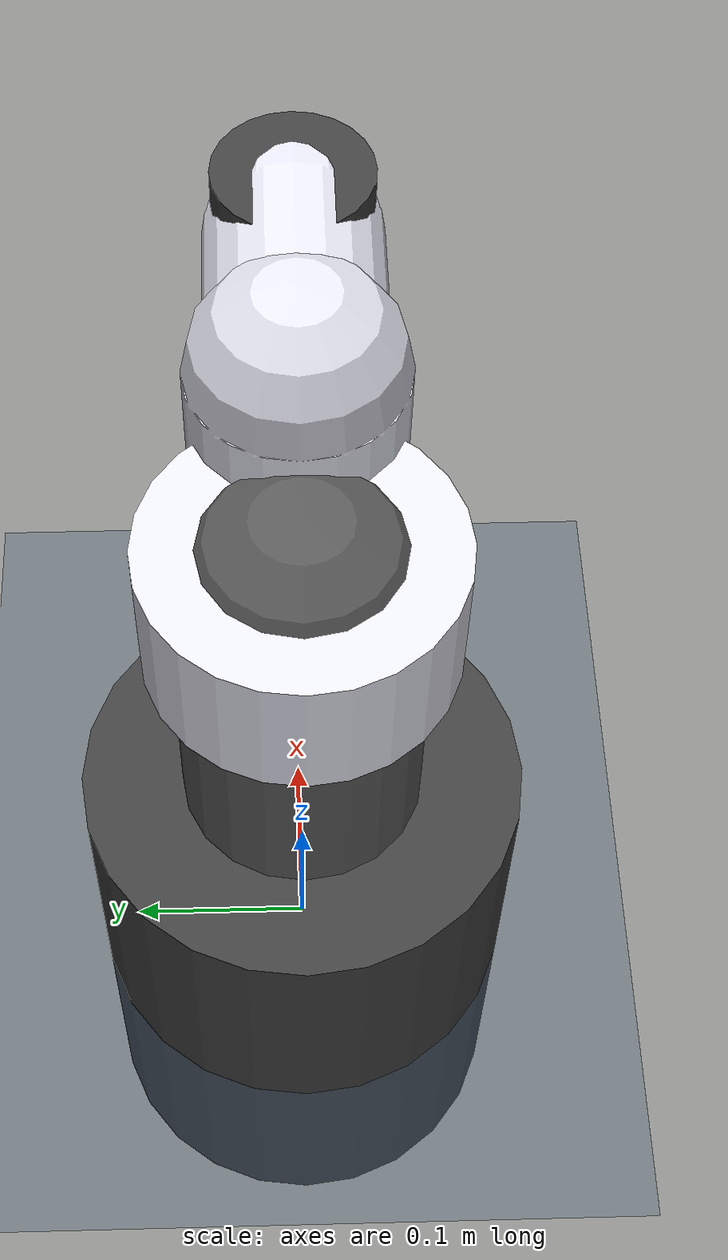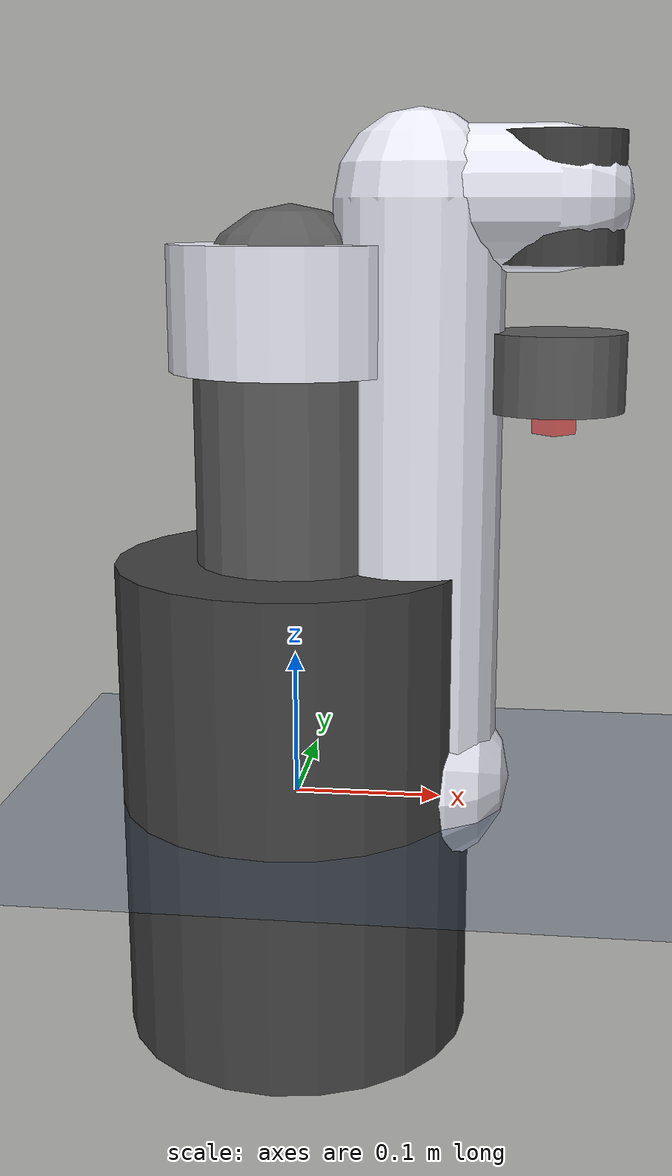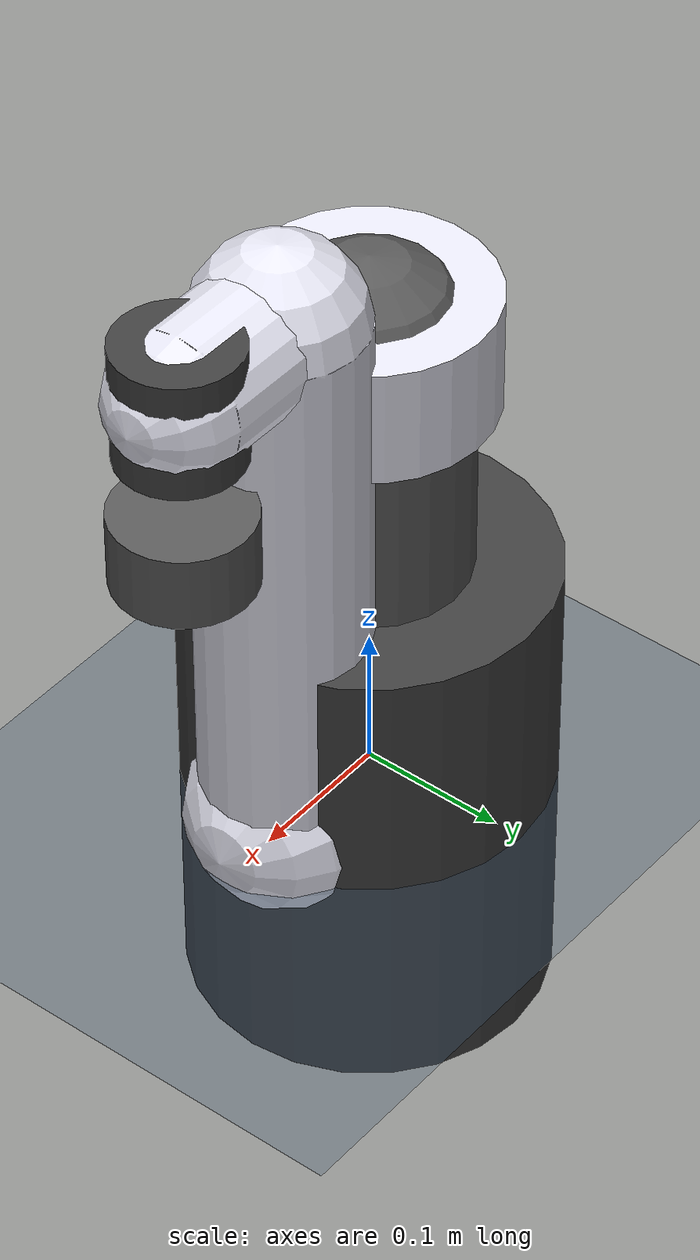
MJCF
<?xml version='1.0' encoding='utf-8'?>
<mujoco model="panda"><compiler angle="radian" meshdir="assets" autolimits="true" /><option integrator="implicitfast" /><default><joint armature="0.1" damping="1" axis="0 0 1" range="-2.8973 2.8973" /><default class="arm"><position ctrlrange="-2.8973 2.8973" forcerange="-150 150" kp="500" kv="50" /></default><default class="collision"><geom type="mesh" group="3" /></default><default class="visual"><geom group="2" /></default></default><asset><mesh name="link0_c" file="link0.stl" /><mesh name="link1_c" file="link1.stl" /><mesh name="link2_c" file="link2.stl" /><mesh name="link3_c" file="link3.stl" /><mesh name="link4_c" file="link4.stl" /><mesh name="link6_c" file="link6.stl" /><mesh name="link7_c" file="link7.stl" /><mesh name="link5_c0" file="link5_collision_0.obj" /><mesh name="link5_c1" file="link5_collision_1.obj" /><mesh name="link5_c2" file="link5_collision_2.obj" /><material name="grey" rgba="0.35 0.35 0.35 1" /><material name="white" rgba="0.9 0.9 0.95 1" /><material name="blue" rgba="0.04 0.54 0.78 1" /><material name="dark" rgba="0.25 0.25 0.25 1" /></asset><worldbody><light name="top" pos="0 0 2" mode="trackcom" /><geom name="floor" type="plane" size="0 0 0.05" rgba="0.2 0.3 0.4 1" /><body name="link0" childclass="arm"><inertial mass="0.629769" pos="-0.041018 -0.000140 0.049974" diaginertia="0.003150 0.003880 0.004285" /><geom type="cylinder" size="0.12 0.1665" material="dark" class="visual" /><geom class="collision" mesh="link0_c" /><body name="link1" pos="0 0 0.333" childclass="arm"><joint name="joint1" /><inertial mass="4.970684" pos="0.003875 0.002081 -0.047620" diaginertia="0.703370 0.706610 0.009117" /><geom type="cylinder" size="0.08 0.04" material="white" class="visual" /><geom class="collision" mesh="link1_c" /><body name="link2" quat="1 -1 0 0" childclass="arm"><joint name="joint2" range="-1.7628 1.7628" /><inertial mass="0.646926" pos="-0.003141 -0.028720 0.003495" diaginertia="0.007962 0.028110 0.025995" /><geom type="capsule" size="0.065" material="grey" class="visual" fromto="0 0 0  0 0.316 0" /><geom class="collision" mesh="link2_c" /><body name="link3" pos="0 0.316 0" quat="1 1 0 0" childclass="arm"><joint name="joint3" /><inertial mass="3.228604" pos="0.027518 0.039252 -0.066502" diaginertia="0.037242 0.036155 0.010830" /><geom type="capsule" size="0.065" material="white" class="visual" fromto="0 0 0  0.0825 0 0" /><geom class="collision" mesh="link3_c" /><body name="link4" pos="0.0825 0 0" quat="1 1 0 0" childclass="arm"><joint name="joint4" range="-3.0718 -0.0698" /><inertial mass="3.587895" pos="-0.053170 0.104419 0.027454" diaginertia="0.025853 0.019552 0.028323" /><geom type="capsule" size="0.055" material="white" class="visual" fromto="0 0 0  0 0.384 0" /><geom class="collision" mesh="link4_c" /><body name="link5" pos="0 0.384 0" quat="1 -1 0 0" childclass="arm"><joint name="joint5" /><inertial mass="1.225946" pos="-0.011953 0.041065 -0.038437" diaginertia="0.035549 0.029474 0.008627" /><geom type="sphere" size="0.05" material="grey" class="visual" /><geom class="collision" mesh="link5_c0" /><geom class="collision" mesh="link5_c1" /><geom class="collision" mesh="link5_c2" /><body name="link6" quat="1 1 0 0" childclass="arm"><joint name="joint6" range="-0.0175 3.7525" /><inertial mass="1.666555" pos="0.060149 -0.014117 -0.010517" diaginertia="0.001964 0.004354 0.005433" /><geom type="capsule" size="0.045" material="white" class="visual" fromto="0 0 0  0.088 0 0" /><geom class="collision" mesh="link6_c" /><body name="link7" pos="0.088 0 0" quat="1 1 0 0" childclass="arm"><joint name="joint7" /><inertial mass="0.735522" pos="0.010517 -0.004252 0.061597" diaginertia="0.012516 0.010027 0.004815" /><geom type="cylinder" size="0.04 0.04" material="dark" class="visual" /><geom class="collision" mesh="link7_c" /><body name="hand" pos="0 0 0.107" quat="0.9238795 0 0 -0.3826834" childclass="arm"><inertial mass="0.73" pos="-0.010000 0.000000 0.030000" diaginertia="0.001000 0.002500 0.001700" /><geom type="cylinder" size="0.045 0.025" material="grey" class="visual" /><site name="gripper_attach" pos="0 0 0.03" size="0.01 0.01 0.01" type="box" rgba="1 0 0 0.5" group="1" /></body></body></body></body></body></body></body></body></body></worldbody><actuator><position class="arm" name="actuator1" joint="joint1" /><position class="arm" name="actuator2" joint="joint2" /><position class="arm" name="actuator3" joint="joint3" /><position class="arm" name="actuator4" joint="joint4" /><position class="arm" name="actuator5" joint="joint5" /><position class="arm" name="actuator6" joint="joint6" /><position class="arm" name="actuator7" joint="joint7" /></actuator><keyframe><key name="home" qpos="0 0 0 -1.57079 0 1.57079 -0.7853" ctrl="0 0 0 -1.57079 0 1.57079 -0.7853" /></keyframe></mujoco>
